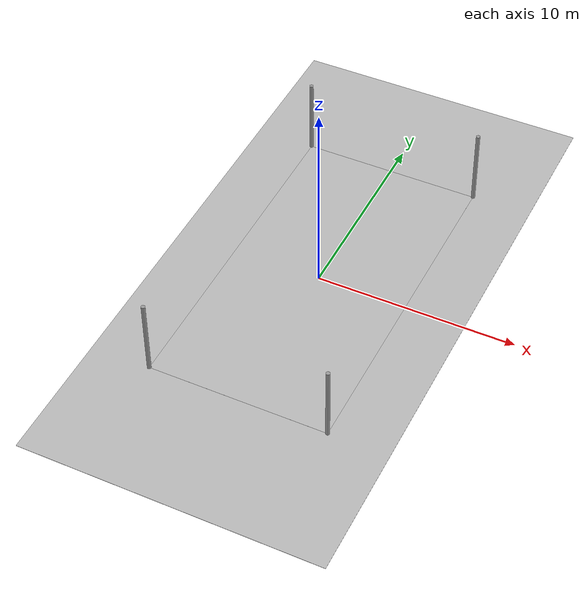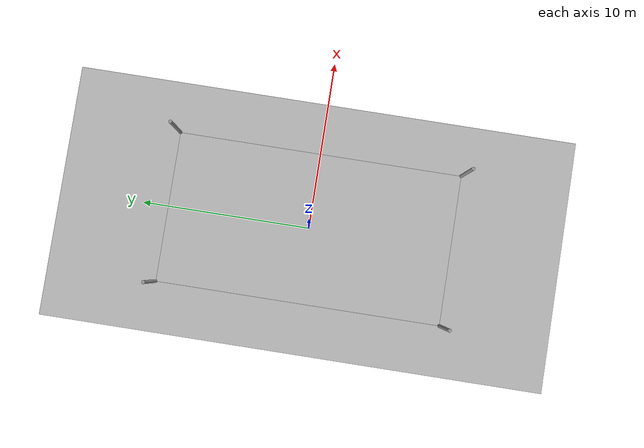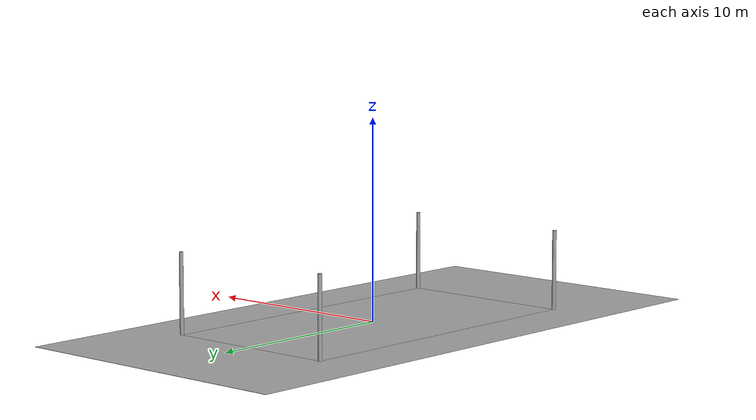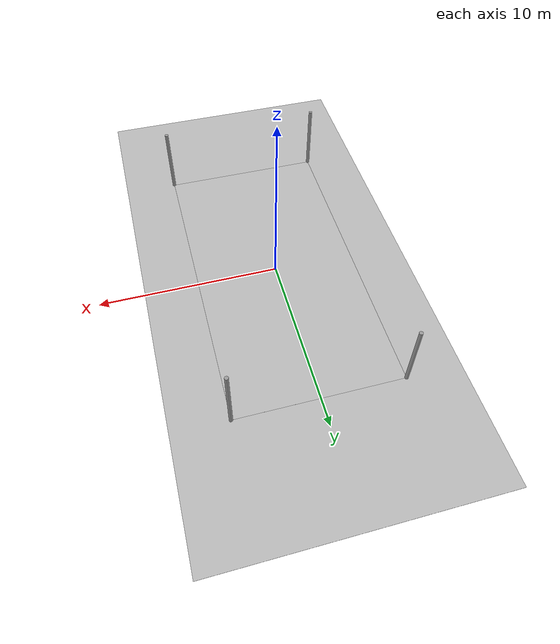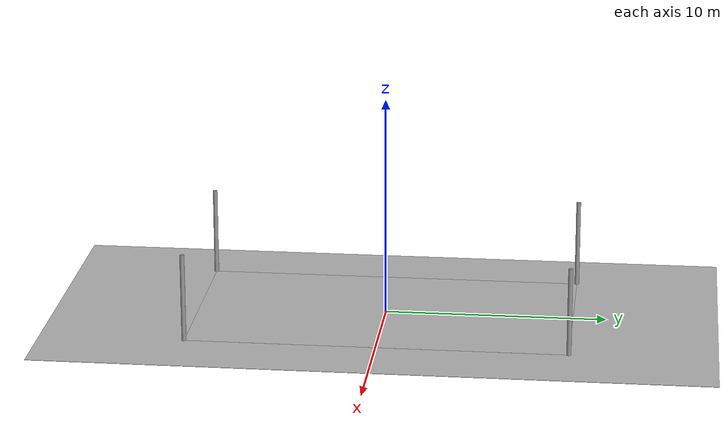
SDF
<?xml version='1.0'?>
<sdf version='1.7'>
  <model name='agri_field'>
    <link name='link'>
      <self_collide>0</self_collide>
      <enable_wind>0</enable_wind>
      <kinematic>0</kinematic>
      <pose>0 0 0 0 -0 0</pose>
      <visual name='outside_visual'>
        <cast_shadows>0</cast_shadows>
        <geometry>
          <box>
            <size>15 30 0.019</size>
          </box>
        </geometry>
        <material>
          <script>
            <uri>model://agri_field/materials/scripts</uri>
            <uri>model://agri_field/materials/textures</uri>
            <name>outside_dirt</name>
          </script>
          <shader type='pixel'/>
        </material>
        <pose>0 0 0 0 -0 0</pose>
        <transparency>0</transparency>
      </visual>
      <visual name='inside_visual'>
        <cast_shadows>0</cast_shadows>
        <geometry>
          <box>
            <size>9 17 0.02</size>
          </box>
        </geometry>
        <material>
          <script>
            <uri>model://agri_field/materials/scripts</uri>
            <uri>model://agri_field/materials/textures</uri>
            <name>inside_dirt</name>
          </script>
          <shader type='pixel'/>
        </material>
        <pose>0 0 0 0 -0 0</pose>
        <transparency>0</transparency>
      </visual>
      <collision name='collision'>
        <laser_retro>0</laser_retro>
        <max_contacts>10</max_contacts>
        <pose>0 0 0 0 -0 0</pose>
        <geometry>
          <box>
            <size>15 30 0.02</size>
          </box>
        </geometry>
        <surface>
          <friction>
            <ode>
              <mu>1</mu>
              <mu2>1</mu2>
              <fdir1>0 0 0</fdir1>
              <slip1>0</slip1>
              <slip2>0</slip2>
            </ode>
            <torsional>
              <coefficient>1</coefficient>
              <patch_radius>0</patch_radius>
              <surface_radius>0</surface_radius>
              <use_patch_radius>1</use_patch_radius>
              <ode>
                <slip>0</slip>
              </ode>
            </torsional>
          </friction>
          <bounce>
            <restitution_coefficient>0</restitution_coefficient>
            <threshold>1e+06</threshold>
          </bounce>
          <contact>
            <collide_without_contact>0</collide_without_contact>
            <collide_without_contact_bitmask>1</collide_without_contact_bitmask>
            <collide_bitmask>1</collide_bitmask>
            <ode>
              <soft_cfm>0</soft_cfm>
              <soft_erp>0.2</soft_erp>
              <kp>1e+13</kp>
              <kd>1</kd>
              <max_vel>0.01</max_vel>
              <min_depth>0</min_depth>
            </ode>
            <bullet>
              <split_impulse>1</split_impulse>
              <split_impulse_penetration_threshold>-0.01</split_impulse_penetration_threshold>
              <soft_cfm>0</soft_cfm>
              <soft_erp>0.2</soft_erp>
              <kp>1e+13</kp>
              <kd>1</kd>
            </bullet>
          </contact>
        </surface>
      </collision>
    </link>
    <link name='link_0'>
      <inertial>
        <mass>1</mass>
        <inertia>
          <ixx>0.145833</ixx>
          <ixy>0</ixy>
          <ixz>0</ixz>
          <iyy>0.145833</iyy>
          <iyz>0</iyz>
          <izz>0.125</izz>
        </inertia>
        <pose>0 0 0 0 -0 0</pose>
      </inertial>
      <pose>4.5 -8.5 0.01 0 -0 0</pose>
      <gravity>1</gravity>
      <self_collide>0</self_collide>
      <kinematic>0</kinematic>
      <enable_wind>0</enable_wind>
      <visual name='visual'>
        <pose>0 0 2 0 -0 0</pose>
        <geometry>
          <cylinder>
            <radius>0.1</radius>
            <length>4</length>
          </cylinder>
        </geometry>
        <material>
          <lighting>1</lighting>
          <script>
            <uri>file://media/materials/scripts/gazebo.material</uri>
            <name>Gazebo/Grey</name>
          </script>
          <shader type='pixel'>
            <normal_map>__default__</normal_map>
          </shader>
          <ambient>0.3 0.3 0.3 1</ambient>
          <diffuse>0.7 0.7 0.7 1</diffuse>
          <specular>0.01 0.01 0.01 1</specular>
          <emissive>0 0 0 1</emissive>
        </material>
        <transparency>0</transparency>
        <cast_shadows>1</cast_shadows>
      </visual>
      <collision name='collision_2'>
        <laser_retro>0</laser_retro>
        <max_contacts>10</max_contacts>
        <pose>0 0 2 0 -0 0</pose>
        <geometry>
          <cylinder>
            <radius>0.1</radius>
            <length>4</length>
          </cylinder>
        </geometry>
        <surface>
          <friction>
            <ode>
              <mu>1</mu>
              <mu2>1</mu2>
              <fdir1>0 0 0</fdir1>
              <slip1>0</slip1>
              <slip2>0</slip2>
            </ode>
            <torsional>
              <coefficient>1</coefficient>
              <patch_radius>0</patch_radius>
              <surface_radius>0</surface_radius>
              <use_patch_radius>1</use_patch_radius>
              <ode>
                <slip>0</slip>
              </ode>
            </torsional>
          </friction>
          <bounce>
            <restitution_coefficient>0</restitution_coefficient>
            <threshold>1e+06</threshold>
          </bounce>
          <contact>
            <collide_without_contact>0</collide_without_contact>
            <collide_without_contact_bitmask>1</collide_without_contact_bitmask>
            <collide_bitmask>1</collide_bitmask>
            <ode>
              <soft_cfm>0</soft_cfm>
              <soft_erp>0.2</soft_erp>
              <kp>1e+13</kp>
              <kd>1</kd>
              <max_vel>0.01</max_vel>
              <min_depth>0</min_depth>
            </ode>
            <bullet>
              <split_impulse>1</split_impulse>
              <split_impulse_penetration_threshold>-0.01</split_impulse_penetration_threshold>
              <soft_cfm>0</soft_cfm>
              <soft_erp>0.2</soft_erp>
              <kp>1e+13</kp>
              <kd>1</kd>
            </bullet>
          </contact>
        </surface>
      </collision>
    </link>
    <link name='link_0_clone'>
      <inertial>
        <mass>1</mass>
        <inertia>
          <ixx>0.145833</ixx>
          <ixy>0</ixy>
          <ixz>0</ixz>
          <iyy>0.145833</iyy>
          <iyz>0</iyz>
          <izz>0.125</izz>
        </inertia>
        <pose>0 0 0 0 -0 0</pose>
      </inertial>
      <pose>-4.5 -8.5 0.01 0 -0 0</pose>
      <gravity>1</gravity>
      <self_collide>0</self_collide>
      <kinematic>0</kinematic>
      <enable_wind>0</enable_wind>
      <visual name='visual'>
        <pose>0 0 2 0 -0 0</pose>
        <geometry>
          <cylinder>
            <radius>0.1</radius>
            <length>4</length>
          </cylinder>
        </geometry>
        <material>
          <lighting>1</lighting>
          <script>
            <uri>file://media/materials/scripts/gazebo.material</uri>
            <name>Gazebo/Grey</name>
          </script>
          <shader type='pixel'>
            <normal_map>__default__</normal_map>
          </shader>
          <ambient>0.3 0.3 0.3 1</ambient>
          <diffuse>0.7 0.7 0.7 1</diffuse>
          <specular>0.01 0.01 0.01 1</specular>
          <emissive>0 0 0 1</emissive>
        </material>
        <transparency>0</transparency>
        <cast_shadows>1</cast_shadows>
      </visual>
      <collision name='collision_2'>
        <laser_retro>0</laser_retro>
        <max_contacts>10</max_contacts>
        <pose>0 0 2 0 -0 0</pose>
        <geometry>
          <cylinder>
            <radius>0.1</radius>
            <length>4</length>
          </cylinder>
        </geometry>
        <surface>
          <friction>
            <ode>
              <mu>1</mu>
              <mu2>1</mu2>
              <fdir1>0 0 0</fdir1>
              <slip1>0</slip1>
              <slip2>0</slip2>
            </ode>
            <torsional>
              <coefficient>1</coefficient>
              <patch_radius>0</patch_radius>
              <surface_radius>0</surface_radius>
              <use_patch_radius>1</use_patch_radius>
              <ode>
                <slip>0</slip>
              </ode>
            </torsional>
          </friction>
          <bounce>
            <restitution_coefficient>0</restitution_coefficient>
            <threshold>1e+06</threshold>
          </bounce>
          <contact>
            <collide_without_contact>0</collide_without_contact>
            <collide_without_contact_bitmask>1</collide_without_contact_bitmask>
            <collide_bitmask>1</collide_bitmask>
            <ode>
              <soft_cfm>0</soft_cfm>
              <soft_erp>0.2</soft_erp>
              <kp>1e+13</kp>
              <kd>1</kd>
              <max_vel>0.01</max_vel>
              <min_depth>0</min_depth>
            </ode>
            <bullet>
              <split_impulse>1</split_impulse>
              <split_impulse_penetration_threshold>-0.01</split_impulse_penetration_threshold>
              <soft_cfm>0</soft_cfm>
              <soft_erp>0.2</soft_erp>
              <kp>1e+13</kp>
              <kd>1</kd>
            </bullet>
          </contact>
        </surface>
      </collision>
    </link>
    <link name='link_0_clone_0'>
      <inertial>
        <mass>1</mass>
        <inertia>
          <ixx>0.145833</ixx>
          <ixy>0</ixy>
          <ixz>0</ixz>
          <iyy>0.145833</iyy>
          <iyz>0</iyz>
          <izz>0.125</izz>
        </inertia>
        <pose>0 0 0 0 -0 0</pose>
      </inertial>
      <pose>4.5 8.5 0.01 0 -0 0</pose>
      <gravity>1</gravity>
      <self_collide>0</self_collide>
      <kinematic>0</kinematic>
      <enable_wind>0</enable_wind>
      <visual name='visual'>
        <pose>0 0 2 0 -0 0</pose>
        <geometry>
          <cylinder>
            <radius>0.1</radius>
            <length>4</length>
          </cylinder>
        </geometry>
        <material>
          <lighting>1</lighting>
          <script>
            <uri>file://media/materials/scripts/gazebo.material</uri>
            <name>Gazebo/Grey</name>
          </script>
          <shader type='pixel'>
            <normal_map>__default__</normal_map>
          </shader>
          <ambient>0.3 0.3 0.3 1</ambient>
          <diffuse>0.7 0.7 0.7 1</diffuse>
          <specular>0.01 0.01 0.01 1</specular>
          <emissive>0 0 0 1</emissive>
        </material>
        <transparency>0</transparency>
        <cast_shadows>1</cast_shadows>
      </visual>
      <collision name='collision_2'>
        <laser_retro>0</laser_retro>
        <max_contacts>10</max_contacts>
        <pose>0 0 2 0 -0 0</pose>
        <geometry>
          <cylinder>
            <radius>0.1</radius>
            <length>4</length>
          </cylinder>
        </geometry>
        <surface>
          <friction>
            <ode>
              <mu>1</mu>
              <mu2>1</mu2>
              <fdir1>0 0 0</fdir1>
              <slip1>0</slip1>
              <slip2>0</slip2>
            </ode>
            <torsional>
              <coefficient>1</coefficient>
              <patch_radius>0</patch_radius>
              <surface_radius>0</surface_radius>
              <use_patch_radius>1</use_patch_radius>
              <ode>
                <slip>0</slip>
              </ode>
            </torsional>
          </friction>
          <bounce>
            <restitution_coefficient>0</restitution_coefficient>
            <threshold>1e+06</threshold>
          </bounce>
          <contact>
            <collide_without_contact>0</collide_without_contact>
            <collide_without_contact_bitmask>1</collide_without_contact_bitmask>
            <collide_bitmask>1</collide_bitmask>
            <ode>
              <soft_cfm>0</soft_cfm>
              <soft_erp>0.2</soft_erp>
              <kp>1e+13</kp>
              <kd>1</kd>
              <max_vel>0.01</max_vel>
              <min_depth>0</min_depth>
            </ode>
            <bullet>
              <split_impulse>1</split_impulse>
              <split_impulse_penetration_threshold>-0.01</split_impulse_penetration_threshold>
              <soft_cfm>0</soft_cfm>
              <soft_erp>0.2</soft_erp>
              <kp>1e+13</kp>
              <kd>1</kd>
            </bullet>
          </contact>
        </surface>
      </collision>
    </link>
    <link name='link_0_clone_0_clone'>
      <inertial>
        <mass>1</mass>
        <inertia>
          <ixx>0.145833</ixx>
          <ixy>0</ixy>
          <ixz>0</ixz>
          <iyy>0.145833</iyy>
          <iyz>0</iyz>
          <izz>0.125</izz>
        </inertia>
        <pose>0 0 0 0 -0 0</pose>
      </inertial>
      <pose>-4.5 8.5 0.01 0 -0 0</pose>
      <gravity>1</gravity>
      <self_collide>0</self_collide>
      <kinematic>0</kinematic>
      <enable_wind>0</enable_wind>
      <visual name='visual'>
        <pose>0 0 2 0 -0 0</pose>
        <geometry>
          <cylinder>
            <radius>0.1</radius>
            <length>4</length>
          </cylinder>
        </geometry>
        <material>
          <lighting>1</lighting>
          <script>
            <uri>file://media/materials/scripts/gazebo.material</uri>
            <name>Gazebo/Grey</name>
          </script>
          <shader type='pixel'>
            <normal_map>__default__</normal_map>
          </shader>
          <ambient>0.3 0.3 0.3 1</ambient>
          <diffuse>0.7 0.7 0.7 1</diffuse>
          <specular>0.01 0.01 0.01 1</specular>
          <emissive>0 0 0 1</emissive>
        </material>
        <transparency>0</transparency>
        <cast_shadows>1</cast_shadows>
      </visual>
      <collision name='collision_2'>
        <laser_retro>0</laser_retro>
        <max_contacts>10</max_contacts>
        <pose>0 0 2 0 -0 0</pose>
        <geometry>
          <cylinder>
            <radius>0.1</radius>
            <length>4</length>
          </cylinder>
        </geometry>
        <surface>
          <friction>
            <ode>
              <mu>1</mu>
              <mu2>1</mu2>
              <fdir1>0 0 0</fdir1>
              <slip1>0</slip1>
              <slip2>0</slip2>
            </ode>
            <torsional>
              <coefficient>1</coefficient>
              <patch_radius>0</patch_radius>
              <surface_radius>0</surface_radius>
              <use_patch_radius>1</use_patch_radius>
              <ode>
                <slip>0</slip>
              </ode>
            </torsional>
          </friction>
          <bounce>
            <restitution_coefficient>0</restitution_coefficient>
            <threshold>1e+06</threshold>
          </bounce>
          <contact>
            <collide_without_contact>0</collide_without_contact>
            <collide_without_contact_bitmask>1</collide_without_contact_bitmask>
            <collide_bitmask>1</collide_bitmask>
            <ode>
              <soft_cfm>0</soft_cfm>
              <soft_erp>0.2</soft_erp>
              <kp>1e+13</kp>
              <kd>1</kd>
              <max_vel>0.01</max_vel>
              <min_depth>0</min_depth>
            </ode>
            <bullet>
              <split_impulse>1</split_impulse>
              <split_impulse_penetration_threshold>-0.01</split_impulse_penetration_threshold>
              <soft_cfm>0</soft_cfm>
              <soft_erp>0.2</soft_erp>
              <kp>1e+13</kp>
              <kd>1</kd>
            </bullet>
          </contact>
        </surface>
      </collision>
    </link>
    <static>1</static>
    <allow_auto_disable>1</allow_auto_disable>
  </model>
</sdf>
